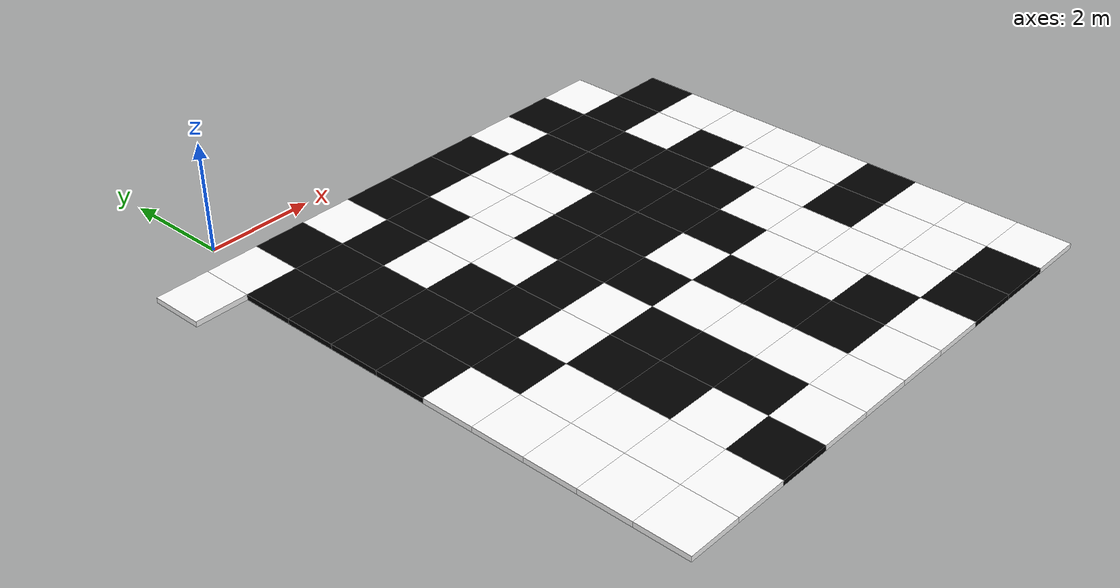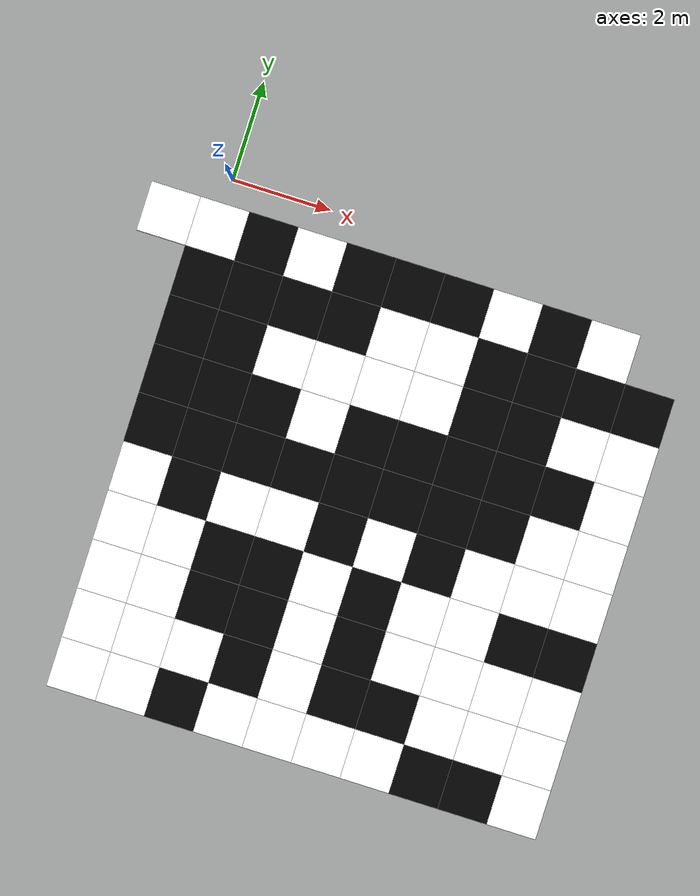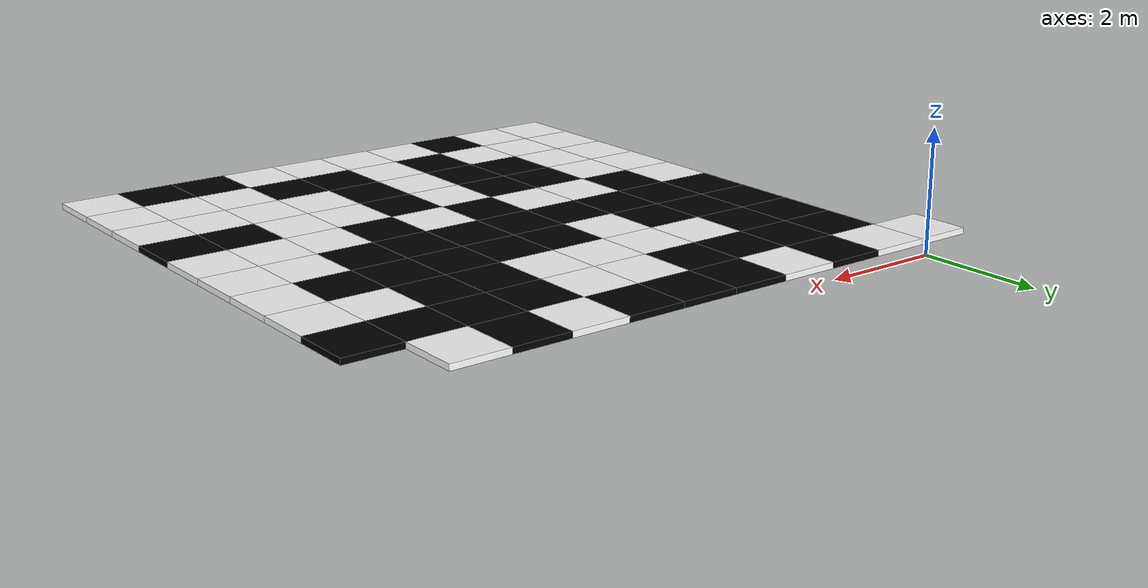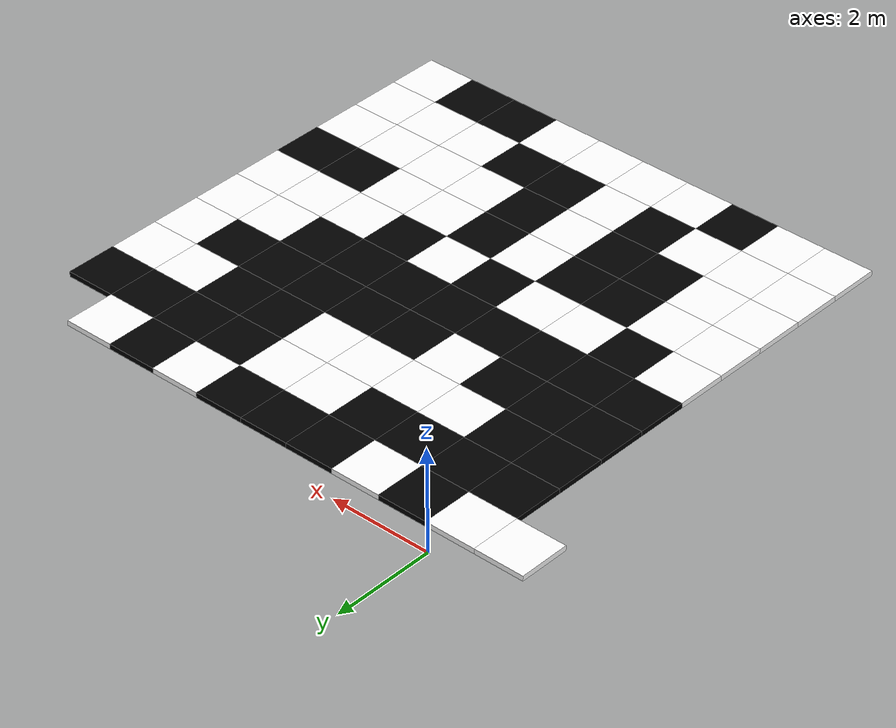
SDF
<sdf version="1.8">
 <world name="collective_perception_task_world">
  <model name="tile_-1_-1">
   <is_static>true</is_static>
   <pose>-1 -1 0 0 0 0</pose>
   <link name="link">
    <collision name="collision"><geometry><box><size>1 1 0.1</size></box></geometry></collision>
    <visual name="visual">
     <geometry><box><size>1 1 0.1</size></box></geometry>
     <material><ambient>1 1 1 1</ambient><diffuse>1 1 1 1</diffuse></material>
    </visual>
   </link>
  </model>
  <model name="tile_0_-10">
   <is_static>true</is_static>
   <pose>0 -10 0 0 0 0</pose>
   <link name="link">
    <collision name="collision"><geometry><box><size>1 1 0.1</size></box></geometry></collision>
    <visual name="visual">
     <geometry><box><size>1 1 0.1</size></box></geometry>
     <material><ambient>1 1 1 1</ambient><diffuse>1 1 1 1</diffuse></material>
    </visual>
   </link>
  </model>
  <model name="tile_0_-9">
   <is_static>true</is_static>
   <pose>0 -9 0 0 0 0</pose>
   <link name="link">
    <collision name="collision"><geometry><box><size>1 1 0.1</size></box></geometry></collision>
    <visual name="visual">
     <geometry><box><size>1 1 0.1</size></box></geometry>
     <material><ambient>1 1 1 1</ambient><diffuse>1 1 1 1</diffuse></material>
    </visual>
   </link>
  </model>
  <model name="tile_0_-8">
   <is_static>true</is_static>
   <pose>0 -8 0 0 0 0</pose>
   <link name="link">
    <collision name="collision"><geometry><box><size>1 1 0.1</size></box></geometry></collision>
    <visual name="visual">
     <geometry><box><size>1 1 0.1</size></box></geometry>
     <material><ambient>1 1 1 1</ambient><diffuse>1 1 1 1</diffuse></material>
    </visual>
   </link>
  </model>
  <model name="tile_0_-7">
   <is_static>true</is_static>
   <pose>0 -7 0 0 0 0</pose>
   <link name="link">
    <collision name="collision"><geometry><box><size>1 1 0.1</size></box></geometry></collision>
    <visual name="visual">
     <geometry><box><size>1 1 0.1</size></box></geometry>
     <material><ambient>1 1 1 1</ambient><diffuse>1 1 1 1</diffuse></material>
    </visual>
   </link>
  </model>
  <model name="tile_0_-6">
   <is_static>true</is_static>
   <pose>0 -6 0 0 0 0</pose>
   <link name="link">
    <collision name="collision"><geometry><box><size>1 1 0.1</size></box></geometry></collision>
    <visual name="visual">
     <geometry><box><size>1 1 0.1</size></box></geometry>
     <material><ambient>1 1 1 1</ambient><diffuse>1 1 1 1</diffuse></material>
    </visual>
   </link>
  </model>
  <model name="tile_0_-5">
   <is_static>true</is_static>
   <pose>0 -5 0 0 0 0</pose>
   <link name="link">
    <collision name="collision"><geometry><box><size>1 1 0.1</size></box></geometry></collision>
    <visual name="visual">
     <geometry><box><size>1 1 0.1</size></box></geometry>
     <material><ambient>0 0 0 1</ambient><diffuse>0 0 0 1</diffuse></material>
    </visual>
   </link>
  </model>
  <model name="tile_0_-4">
   <is_static>true</is_static>
   <pose>0 -4 0 0 0 0</pose>
   <link name="link">
    <collision name="collision"><geometry><box><size>1 1 0.1</size></box></geometry></collision>
    <visual name="visual">
     <geometry><box><size>1 1 0.1</size></box></geometry>
     <material><ambient>0 0 0 1</ambient><diffuse>0 0 0 1</diffuse></material>
    </visual>
   </link>
  </model>
  <model name="tile_0_-3">
   <is_static>true</is_static>
   <pose>0 -3 0 0 0 0</pose>
   <link name="link">
    <collision name="collision"><geometry><box><size>1 1 0.1</size></box></geometry></collision>
    <visual name="visual">
     <geometry><box><size>1 1 0.1</size></box></geometry>
     <material><ambient>0 0 0 1</ambient><diffuse>0 0 0 1</diffuse></material>
    </visual>
   </link>
  </model>
  <model name="tile_0_-2">
   <is_static>true</is_static>
   <pose>0 -2 0 0 0 0</pose>
   <link name="link">
    <collision name="collision"><geometry><box><size>1 1 0.1</size></box></geometry></collision>
    <visual name="visual">
     <geometry><box><size>1 1 0.1</size></box></geometry>
     <material><ambient>0 0 0 1</ambient><diffuse>0 0 0 1</diffuse></material>
    </visual>
   </link>
  </model>
  <model name="tile_0_-1">
   <is_static>true</is_static>
   <pose>0 -1 0 0 0 0</pose>
   <link name="link">
    <collision name="collision"><geometry><box><size>1 1 0.1</size></box></geometry></collision>
    <visual name="visual">
     <geometry><box><size>1 1 0.1</size></box></geometry>
     <material><ambient>1 1 1 1</ambient><diffuse>1 1 1 1</diffuse></material>
    </visual>
   </link>
  </model>
  <model name="tile_1_-10">
   <is_static>true</is_static>
   <pose>1 -10 0 0 0 0</pose>
   <link name="link">
    <collision name="collision"><geometry><box><size>1 1 0.1</size></box></geometry></collision>
    <visual name="visual">
     <geometry><box><size>1 1 0.1</size></box></geometry>
     <material><ambient>1 1 1 1</ambient><diffuse>1 1 1 1</diffuse></material>
    </visual>
   </link>
  </model>
  <model name="tile_1_-9">
   <is_static>true</is_static>
   <pose>1 -9 0 0 0 0</pose>
   <link name="link">
    <collision name="collision"><geometry><box><size>1 1 0.1</size></box></geometry></collision>
    <visual name="visual">
     <geometry><box><size>1 1 0.1</size></box></geometry>
     <material><ambient>1 1 1 1</ambient><diffuse>1 1 1 1</diffuse></material>
    </visual>
   </link>
  </model>
  <model name="tile_1_-8">
   <is_static>true</is_static>
   <pose>1 -8 0 0 0 0</pose>
   <link name="link">
    <collision name="collision"><geometry><box><size>1 1 0.1</size></box></geometry></collision>
    <visual name="visual">
     <geometry><box><size>1 1 0.1</size></box></geometry>
     <material><ambient>1 1 1 1</ambient><diffuse>1 1 1 1</diffuse></material>
    </visual>
   </link>
  </model>
  <model name="tile_1_-7">
   <is_static>true</is_static>
   <pose>1 -7 0 0 0 0</pose>
   <link name="link">
    <collision name="collision"><geometry><box><size>1 1 0.1</size></box></geometry></collision>
    <visual name="visual">
     <geometry><box><size>1 1 0.1</size></box></geometry>
     <material><ambient>1 1 1 1</ambient><diffuse>1 1 1 1</diffuse></material>
    </visual>
   </link>
  </model>
  <model name="tile_1_-6">
   <is_static>true</is_static>
   <pose>1 -6 0 0 0 0</pose>
   <link name="link">
    <collision name="collision"><geometry><box><size>1 1 0.1</size></box></geometry></collision>
    <visual name="visual">
     <geometry><box><size>1 1 0.1</size></box></geometry>
     <material><ambient>0 0 0 1</ambient><diffuse>0 0 0 1</diffuse></material>
    </visual>
   </link>
  </model>
  <model name="tile_1_-5">
   <is_static>true</is_static>
   <pose>1 -5 0 0 0 0</pose>
   <link name="link">
    <collision name="collision"><geometry><box><size>1 1 0.1</size></box></geometry></collision>
    <visual name="visual">
     <geometry><box><size>1 1 0.1</size></box></geometry>
     <material><ambient>0 0 0 1</ambient><diffuse>0 0 0 1</diffuse></material>
    </visual>
   </link>
  </model>
  <model name="tile_1_-4">
   <is_static>true</is_static>
   <pose>1 -4 0 0 0 0</pose>
   <link name="link">
    <collision name="collision"><geometry><box><size>1 1 0.1</size></box></geometry></collision>
    <visual name="visual">
     <geometry><box><size>1 1 0.1</size></box></geometry>
     <material><ambient>0 0 0 1</ambient><diffuse>0 0 0 1</diffuse></material>
    </visual>
   </link>
  </model>
  <model name="tile_1_-3">
   <is_static>true</is_static>
   <pose>1 -3 0 0 0 0</pose>
   <link name="link">
    <collision name="collision"><geometry><box><size>1 1 0.1</size></box></geometry></collision>
    <visual name="visual">
     <geometry><box><size>1 1 0.1</size></box></geometry>
     <material><ambient>0 0 0 1</ambient><diffuse>0 0 0 1</diffuse></material>
    </visual>
   </link>
  </model>
  <model name="tile_1_-2">
   <is_static>true</is_static>
   <pose>1 -2 0 0 0 0</pose>
   <link name="link">
    <collision name="collision"><geometry><box><size>1 1 0.1</size></box></geometry></collision>
    <visual name="visual">
     <geometry><box><size>1 1 0.1</size></box></geometry>
     <material><ambient>0 0 0 1</ambient><diffuse>0 0 0 1</diffuse></material>
    </visual>
   </link>
  </model>
  <model name="tile_1_-1">
   <is_static>true</is_static>
   <pose>1 -1 0 0 0 0</pose>
   <link name="link">
    <collision name="collision"><geometry><box><size>1 1 0.1</size></box></geometry></collision>
    <visual name="visual">
     <geometry><box><size>1 1 0.1</size></box></geometry>
     <material><ambient>0 0 0 1</ambient><diffuse>0 0 0 1</diffuse></material>
    </visual>
   </link>
  </model>
  <model name="tile_2_-10">
   <is_static>true</is_static>
   <pose>2 -10 0 0 0 0</pose>
   <link name="link">
    <collision name="collision"><geometry><box><size>1 1 0.1</size></box></geometry></collision>
    <visual name="visual">
     <geometry><box><size>1 1 0.1</size></box></geometry>
     <material><ambient>0 0 0 1</ambient><diffuse>0 0 0 1</diffuse></material>
    </visual>
   </link>
  </model>
  <model name="tile_2_-9">
   <is_static>true</is_static>
   <pose>2 -9 0 0 0 0</pose>
   <link name="link">
    <collision name="collision"><geometry><box><size>1 1 0.1</size></box></geometry></collision>
    <visual name="visual">
     <geometry><box><size>1 1 0.1</size></box></geometry>
     <material><ambient>1 1 1 1</ambient><diffuse>1 1 1 1</diffuse></material>
    </visual>
   </link>
  </model>
  <model name="tile_2_-8">
   <is_static>true</is_static>
   <pose>2 -8 0 0 0 0</pose>
   <link name="link">
    <collision name="collision"><geometry><box><size>1 1 0.1</size></box></geometry></collision>
    <visual name="visual">
     <geometry><box><size>1 1 0.1</size></box></geometry>
     <material><ambient>0 0 0 1</ambient><diffuse>0 0 0 1</diffuse></material>
    </visual>
   </link>
  </model>
  <model name="tile_2_-7">
   <is_static>true</is_static>
   <pose>2 -7 0 0 0 0</pose>
   <link name="link">
    <collision name="collision"><geometry><box><size>1 1 0.1</size></box></geometry></collision>
    <visual name="visual">
     <geometry><box><size>1 1 0.1</size></box></geometry>
     <material><ambient>0 0 0 1</ambient><diffuse>0 0 0 1</diffuse></material>
    </visual>
   </link>
  </model>
  <model name="tile_2_-6">
   <is_static>true</is_static>
   <pose>2 -6 0 0 0 0</pose>
   <link name="link">
    <collision name="collision"><geometry><box><size>1 1 0.1</size></box></geometry></collision>
    <visual name="visual">
     <geometry><box><size>1 1 0.1</size></box></geometry>
     <material><ambient>1 1 1 1</ambient><diffuse>1 1 1 1</diffuse></material>
    </visual>
   </link>
  </model>
  <model name="tile_2_-5">
   <is_static>true</is_static>
   <pose>2 -5 0 0 0 0</pose>
   <link name="link">
    <collision name="collision"><geometry><box><size>1 1 0.1</size></box></geometry></collision>
    <visual name="visual">
     <geometry><box><size>1 1 0.1</size></box></geometry>
     <material><ambient>0 0 0 1</ambient><diffuse>0 0 0 1</diffuse></material>
    </visual>
   </link>
  </model>
  <model name="tile_2_-4">
   <is_static>true</is_static>
   <pose>2 -4 0 0 0 0</pose>
   <link name="link">
    <collision name="collision"><geometry><box><size>1 1 0.1</size></box></geometry></collision>
    <visual name="visual">
     <geometry><box><size>1 1 0.1</size></box></geometry>
     <material><ambient>0 0 0 1</ambient><diffuse>0 0 0 1</diffuse></material>
    </visual>
   </link>
  </model>
  <model name="tile_2_-3">
   <is_static>true</is_static>
   <pose>2 -3 0 0 0 0</pose>
   <link name="link">
    <collision name="collision"><geometry><box><size>1 1 0.1</size></box></geometry></collision>
    <visual name="visual">
     <geometry><box><size>1 1 0.1</size></box></geometry>
     <material><ambient>1 1 1 1</ambient><diffuse>1 1 1 1</diffuse></material>
    </visual>
   </link>
  </model>
  <model name="tile_2_-2">
   <is_static>true</is_static>
   <pose>2 -2 0 0 0 0</pose>
   <link name="link">
    <collision name="collision"><geometry><box><size>1 1 0.1</size></box></geometry></collision>
    <visual name="visual">
     <geometry><box><size>1 1 0.1</size></box></geometry>
     <material><ambient>0 0 0 1</ambient><diffuse>0 0 0 1</diffuse></material>
    </visual>
   </link>
  </model>
  <model name="tile_2_-1">
   <is_static>true</is_static>
   <pose>2 -1 0 0 0 0</pose>
   <link name="link">
    <collision name="collision"><geometry><box><size>1 1 0.1</size></box></geometry></collision>
    <visual name="visual">
     <geometry><box><size>1 1 0.1</size></box></geometry>
     <material><ambient>1 1 1 1</ambient><diffuse>1 1 1 1</diffuse></material>
    </visual>
   </link>
  </model>
  <model name="tile_3_-10">
   <is_static>true</is_static>
   <pose>3 -10 0 0 0 0</pose>
   <link name="link">
    <collision name="collision"><geometry><box><size>1 1 0.1</size></box></geometry></collision>
    <visual name="visual">
     <geometry><box><size>1 1 0.1</size></box></geometry>
     <material><ambient>1 1 1 1</ambient><diffuse>1 1 1 1</diffuse></material>
    </visual>
   </link>
  </model>
  <model name="tile_3_-9">
   <is_static>true</is_static>
   <pose>3 -9 0 0 0 0</pose>
   <link name="link">
    <collision name="collision"><geometry><box><size>1 1 0.1</size></box></geometry></collision>
    <visual name="visual">
     <geometry><box><size>1 1 0.1</size></box></geometry>
     <material><ambient>0 0 0 1</ambient><diffuse>0 0 0 1</diffuse></material>
    </visual>
   </link>
  </model>
  <model name="tile_3_-8">
   <is_static>true</is_static>
   <pose>3 -8 0 0 0 0</pose>
   <link name="link">
    <collision name="collision"><geometry><box><size>1 1 0.1</size></box></geometry></collision>
    <visual name="visual">
     <geometry><box><size>1 1 0.1</size></box></geometry>
     <material><ambient>0 0 0 1</ambient><diffuse>0 0 0 1</diffuse></material>
    </visual>
   </link>
  </model>
  <model name="tile_3_-7">
   <is_static>true</is_static>
   <pose>3 -7 0 0 0 0</pose>
   <link name="link">
    <collision name="collision"><geometry><box><size>1 1 0.1</size></box></geometry></collision>
    <visual name="visual">
     <geometry><box><size>1 1 0.1</size></box></geometry>
     <material><ambient>0 0 0 1</ambient><diffuse>0 0 0 1</diffuse></material>
    </visual>
   </link>
  </model>
  <model name="tile_3_-6">
   <is_static>true</is_static>
   <pose>3 -6 0 0 0 0</pose>
   <link name="link">
    <collision name="collision"><geometry><box><size>1 1 0.1</size></box></geometry></collision>
    <visual name="visual">
     <geometry><box><size>1 1 0.1</size></box></geometry>
     <material><ambient>1 1 1 1</ambient><diffuse>1 1 1 1</diffuse></material>
    </visual>
   </link>
  </model>
  <model name="tile_3_-5">
   <is_static>true</is_static>
   <pose>3 -5 0 0 0 0</pose>
   <link name="link">
    <collision name="collision"><geometry><box><size>1 1 0.1</size></box></geometry></collision>
    <visual name="visual">
     <geometry><box><size>1 1 0.1</size></box></geometry>
     <material><ambient>0 0 0 1</ambient><diffuse>0 0 0 1</diffuse></material>
    </visual>
   </link>
  </model>
  <model name="tile_3_-4">
   <is_static>true</is_static>
   <pose>3 -4 0 0 0 0</pose>
   <link name="link">
    <collision name="collision"><geometry><box><size>1 1 0.1</size></box></geometry></collision>
    <visual name="visual">
     <geometry><box><size>1 1 0.1</size></box></geometry>
     <material><ambient>1 1 1 1</ambient><diffuse>1 1 1 1</diffuse></material>
    </visual>
   </link>
  </model>
  <model name="tile_3_-3">
   <is_static>true</is_static>
   <pose>3 -3 0 0 0 0</pose>
   <link name="link">
    <collision name="collision"><geometry><box><size>1 1 0.1</size></box></geometry></collision>
    <visual name="visual">
     <geometry><box><size>1 1 0.1</size></box></geometry>
     <material><ambient>1 1 1 1</ambient><diffuse>1 1 1 1</diffuse></material>
    </visual>
   </link>
  </model>
  <model name="tile_3_-2">
   <is_static>true</is_static>
   <pose>3 -2 0 0 0 0</pose>
   <link name="link">
    <collision name="collision"><geometry><box><size>1 1 0.1</size></box></geometry></collision>
    <visual name="visual">
     <geometry><box><size>1 1 0.1</size></box></geometry>
     <material><ambient>0 0 0 1</ambient><diffuse>0 0 0 1</diffuse></material>
    </visual>
   </link>
  </model>
  <model name="tile_3_-1">
   <is_static>true</is_static>
   <pose>3 -1 0 0 0 0</pose>
   <link name="link">
    <collision name="collision"><geometry><box><size>1 1 0.1</size></box></geometry></collision>
    <visual name="visual">
     <geometry><box><size>1 1 0.1</size></box></geometry>
     <material><ambient>0 0 0 1</ambient><diffuse>0 0 0 1</diffuse></material>
    </visual>
   </link>
  </model>
  <model name="tile_4_-10">
   <is_static>true</is_static>
   <pose>4 -10 0 0 0 0</pose>
   <link name="link">
    <collision name="collision"><geometry><box><size>1 1 0.1</size></box></geometry></collision>
    <visual name="visual">
     <geometry><box><size>1 1 0.1</size></box></geometry>
     <material><ambient>1 1 1 1</ambient><diffuse>1 1 1 1</diffuse></material>
    </visual>
   </link>
  </model>
  <model name="tile_4_-9">
   <is_static>true</is_static>
   <pose>4 -9 0 0 0 0</pose>
   <link name="link">
    <collision name="collision"><geometry><box><size>1 1 0.1</size></box></geometry></collision>
    <visual name="visual">
     <geometry><box><size>1 1 0.1</size></box></geometry>
     <material><ambient>1 1 1 1</ambient><diffuse>1 1 1 1</diffuse></material>
    </visual>
   </link>
  </model>
  <model name="tile_4_-8">
   <is_static>true</is_static>
   <pose>4 -8 0 0 0 0</pose>
   <link name="link">
    <collision name="collision"><geometry><box><size>1 1 0.1</size></box></geometry></collision>
    <visual name="visual">
     <geometry><box><size>1 1 0.1</size></box></geometry>
     <material><ambient>1 1 1 1</ambient><diffuse>1 1 1 1</diffuse></material>
    </visual>
   </link>
  </model>
  <model name="tile_4_-7">
   <is_static>true</is_static>
   <pose>4 -7 0 0 0 0</pose>
   <link name="link">
    <collision name="collision"><geometry><box><size>1 1 0.1</size></box></geometry></collision>
    <visual name="visual">
     <geometry><box><size>1 1 0.1</size></box></geometry>
     <material><ambient>1 1 1 1</ambient><diffuse>1 1 1 1</diffuse></material>
    </visual>
   </link>
  </model>
  <model name="tile_4_-6">
   <is_static>true</is_static>
   <pose>4 -6 0 0 0 0</pose>
   <link name="link">
    <collision name="collision"><geometry><box><size>1 1 0.1</size></box></geometry></collision>
    <visual name="visual">
     <geometry><box><size>1 1 0.1</size></box></geometry>
     <material><ambient>0 0 0 1</ambient><diffuse>0 0 0 1</diffuse></material>
    </visual>
   </link>
  </model>
  <model name="tile_4_-5">
   <is_static>true</is_static>
   <pose>4 -5 0 0 0 0</pose>
   <link name="link">
    <collision name="collision"><geometry><box><size>1 1 0.1</size></box></geometry></collision>
    <visual name="visual">
     <geometry><box><size>1 1 0.1</size></box></geometry>
     <material><ambient>0 0 0 1</ambient><diffuse>0 0 0 1</diffuse></material>
    </visual>
   </link>
  </model>
  <model name="tile_4_-4">
   <is_static>true</is_static>
   <pose>4 -4 0 0 0 0</pose>
   <link name="link">
    <collision name="collision"><geometry><box><size>1 1 0.1</size></box></geometry></collision>
    <visual name="visual">
     <geometry><box><size>1 1 0.1</size></box></geometry>
     <material><ambient>0 0 0 1</ambient><diffuse>0 0 0 1</diffuse></material>
    </visual>
   </link>
  </model>
  <model name="tile_4_-3">
   <is_static>true</is_static>
   <pose>4 -3 0 0 0 0</pose>
   <link name="link">
    <collision name="collision"><geometry><box><size>1 1 0.1</size></box></geometry></collision>
    <visual name="visual">
     <geometry><box><size>1 1 0.1</size></box></geometry>
     <material><ambient>1 1 1 1</ambient><diffuse>1 1 1 1</diffuse></material>
    </visual>
   </link>
  </model>
  <model name="tile_4_-2">
   <is_static>true</is_static>
   <pose>4 -2 0 0 0 0</pose>
   <link name="link">
    <collision name="collision"><geometry><box><size>1 1 0.1</size></box></geometry></collision>
    <visual name="visual">
     <geometry><box><size>1 1 0.1</size></box></geometry>
     <material><ambient>1 1 1 1</ambient><diffuse>1 1 1 1</diffuse></material>
    </visual>
   </link>
  </model>
  <model name="tile_4_-1">
   <is_static>true</is_static>
   <pose>4 -1 0 0 0 0</pose>
   <link name="link">
    <collision name="collision"><geometry><box><size>1 1 0.1</size></box></geometry></collision>
    <visual name="visual">
     <geometry><box><size>1 1 0.1</size></box></geometry>
     <material><ambient>0 0 0 1</ambient><diffuse>0 0 0 1</diffuse></material>
    </visual>
   </link>
  </model>
  <model name="tile_5_-10">
   <is_static>true</is_static>
   <pose>5 -10 0 0 0 0</pose>
   <link name="link">
    <collision name="collision"><geometry><box><size>1 1 0.1</size></box></geometry></collision>
    <visual name="visual">
     <geometry><box><size>1 1 0.1</size></box></geometry>
     <material><ambient>1 1 1 1</ambient><diffuse>1 1 1 1</diffuse></material>
    </visual>
   </link>
  </model>
  <model name="tile_5_-9">
   <is_static>true</is_static>
   <pose>5 -9 0 0 0 0</pose>
   <link name="link">
    <collision name="collision"><geometry><box><size>1 1 0.1</size></box></geometry></collision>
    <visual name="visual">
     <geometry><box><size>1 1 0.1</size></box></geometry>
     <material><ambient>0 0 0 1</ambient><diffuse>0 0 0 1</diffuse></material>
    </visual>
   </link>
  </model>
  <model name="tile_5_-8">
   <is_static>true</is_static>
   <pose>5 -8 0 0 0 0</pose>
   <link name="link">
    <collision name="collision"><geometry><box><size>1 1 0.1</size></box></geometry></collision>
    <visual name="visual">
     <geometry><box><size>1 1 0.1</size></box></geometry>
     <material><ambient>0 0 0 1</ambient><diffuse>0 0 0 1</diffuse></material>
    </visual>
   </link>
  </model>
  <model name="tile_5_-7">
   <is_static>true</is_static>
   <pose>5 -7 0 0 0 0</pose>
   <link name="link">
    <collision name="collision"><geometry><box><size>1 1 0.1</size></box></geometry></collision>
    <visual name="visual">
     <geometry><box><size>1 1 0.1</size></box></geometry>
     <material><ambient>0 0 0 1</ambient><diffuse>0 0 0 1</diffuse></material>
    </visual>
   </link>
  </model>
  <model name="tile_5_-6">
   <is_static>true</is_static>
   <pose>5 -6 0 0 0 0</pose>
   <link name="link">
    <collision name="collision"><geometry><box><size>1 1 0.1</size></box></geometry></collision>
    <visual name="visual">
     <geometry><box><size>1 1 0.1</size></box></geometry>
     <material><ambient>1 1 1 1</ambient><diffuse>1 1 1 1</diffuse></material>
    </visual>
   </link>
  </model>
  <model name="tile_5_-5">
   <is_static>true</is_static>
   <pose>5 -5 0 0 0 0</pose>
   <link name="link">
    <collision name="collision"><geometry><box><size>1 1 0.1</size></box></geometry></collision>
    <visual name="visual">
     <geometry><box><size>1 1 0.1</size></box></geometry>
     <material><ambient>0 0 0 1</ambient><diffuse>0 0 0 1</diffuse></material>
    </visual>
   </link>
  </model>
  <model name="tile_5_-4">
   <is_static>true</is_static>
   <pose>5 -4 0 0 0 0</pose>
   <link name="link">
    <collision name="collision"><geometry><box><size>1 1 0.1</size></box></geometry></collision>
    <visual name="visual">
     <geometry><box><size>1 1 0.1</size></box></geometry>
     <material><ambient>0 0 0 1</ambient><diffuse>0 0 0 1</diffuse></material>
    </visual>
   </link>
  </model>
  <model name="tile_5_-3">
   <is_static>true</is_static>
   <pose>5 -3 0 0 0 0</pose>
   <link name="link">
    <collision name="collision"><geometry><box><size>1 1 0.1</size></box></geometry></collision>
    <visual name="visual">
     <geometry><box><size>1 1 0.1</size></box></geometry>
     <material><ambient>1 1 1 1</ambient><diffuse>1 1 1 1</diffuse></material>
    </visual>
   </link>
  </model>
  <model name="tile_5_-2">
   <is_static>true</is_static>
   <pose>5 -2 0 0 0 0</pose>
   <link name="link">
    <collision name="collision"><geometry><box><size>1 1 0.1</size></box></geometry></collision>
    <visual name="visual">
     <geometry><box><size>1 1 0.1</size></box></geometry>
     <material><ambient>1 1 1 1</ambient><diffuse>1 1 1 1</diffuse></material>
    </visual>
   </link>
  </model>
  <model name="tile_5_-1">
   <is_static>true</is_static>
   <pose>5 -1 0 0 0 0</pose>
   <link name="link">
    <collision name="collision"><geometry><box><size>1 1 0.1</size></box></geometry></collision>
    <visual name="visual">
     <geometry><box><size>1 1 0.1</size></box></geometry>
     <material><ambient>0 0 0 1</ambient><diffuse>0 0 0 1</diffuse></material>
    </visual>
   </link>
  </model>
  <model name="tile_6_-10">
   <is_static>true</is_static>
   <pose>6 -10 0 0 0 0</pose>
   <link name="link">
    <collision name="collision"><geometry><box><size>1 1 0.1</size></box></geometry></collision>
    <visual name="visual">
     <geometry><box><size>1 1 0.1</size></box></geometry>
     <material><ambient>1 1 1 1</ambient><diffuse>1 1 1 1</diffuse></material>
    </visual>
   </link>
  </model>
  <model name="tile_6_-9">
   <is_static>true</is_static>
   <pose>6 -9 0 0 0 0</pose>
   <link name="link">
    <collision name="collision"><geometry><box><size>1 1 0.1</size></box></geometry></collision>
    <visual name="visual">
     <geometry><box><size>1 1 0.1</size></box></geometry>
     <material><ambient>0 0 0 1</ambient><diffuse>0 0 0 1</diffuse></material>
    </visual>
   </link>
  </model>
  <model name="tile_6_-8">
   <is_static>true</is_static>
   <pose>6 -8 0 0 0 0</pose>
   <link name="link">
    <collision name="collision"><geometry><box><size>1 1 0.1</size></box></geometry></collision>
    <visual name="visual">
     <geometry><box><size>1 1 0.1</size></box></geometry>
     <material><ambient>1 1 1 1</ambient><diffuse>1 1 1 1</diffuse></material>
    </visual>
   </link>
  </model>
  <model name="tile_6_-7">
   <is_static>true</is_static>
   <pose>6 -7 0 0 0 0</pose>
   <link name="link">
    <collision name="collision"><geometry><box><size>1 1 0.1</size></box></geometry></collision>
    <visual name="visual">
     <geometry><box><size>1 1 0.1</size></box></geometry>
     <material><ambient>1 1 1 1</ambient><diffuse>1 1 1 1</diffuse></material>
    </visual>
   </link>
  </model>
  <model name="tile_6_-6">
   <is_static>true</is_static>
   <pose>6 -6 0 0 0 0</pose>
   <link name="link">
    <collision name="collision"><geometry><box><size>1 1 0.1</size></box></geometry></collision>
    <visual name="visual">
     <geometry><box><size>1 1 0.1</size></box></geometry>
     <material><ambient>0 0 0 1</ambient><diffuse>0 0 0 1</diffuse></material>
    </visual>
   </link>
  </model>
  <model name="tile_6_-5">
   <is_static>true</is_static>
   <pose>6 -5 0 0 0 0</pose>
   <link name="link">
    <collision name="collision"><geometry><box><size>1 1 0.1</size></box></geometry></collision>
    <visual name="visual">
     <geometry><box><size>1 1 0.1</size></box></geometry>
     <material><ambient>0 0 0 1</ambient><diffuse>0 0 0 1</diffuse></material>
    </visual>
   </link>
  </model>
  <model name="tile_6_-4">
   <is_static>true</is_static>
   <pose>6 -4 0 0 0 0</pose>
   <link name="link">
    <collision name="collision"><geometry><box><size>1 1 0.1</size></box></geometry></collision>
    <visual name="visual">
     <geometry><box><size>1 1 0.1</size></box></geometry>
     <material><ambient>0 0 0 1</ambient><diffuse>0 0 0 1</diffuse></material>
    </visual>
   </link>
  </model>
  <model name="tile_6_-3">
   <is_static>true</is_static>
   <pose>6 -3 0 0 0 0</pose>
   <link name="link">
    <collision name="collision"><geometry><box><size>1 1 0.1</size></box></geometry></collision>
    <visual name="visual">
     <geometry><box><size>1 1 0.1</size></box></geometry>
     <material><ambient>0 0 0 1</ambient><diffuse>0 0 0 1</diffuse></material>
    </visual>
   </link>
  </model>
  <model name="tile_6_-2">
   <is_static>true</is_static>
   <pose>6 -2 0 0 0 0</pose>
   <link name="link">
    <collision name="collision"><geometry><box><size>1 1 0.1</size></box></geometry></collision>
    <visual name="visual">
     <geometry><box><size>1 1 0.1</size></box></geometry>
     <material><ambient>0 0 0 1</ambient><diffuse>0 0 0 1</diffuse></material>
    </visual>
   </link>
  </model>
  <model name="tile_6_-1">
   <is_static>true</is_static>
   <pose>6 -1 0 0 0 0</pose>
   <link name="link">
    <collision name="collision"><geometry><box><size>1 1 0.1</size></box></geometry></collision>
    <visual name="visual">
     <geometry><box><size>1 1 0.1</size></box></geometry>
     <material><ambient>1 1 1 1</ambient><diffuse>1 1 1 1</diffuse></material>
    </visual>
   </link>
  </model>
  <model name="tile_7_-10">
   <is_static>true</is_static>
   <pose>7 -10 0 0 0 0</pose>
   <link name="link">
    <collision name="collision"><geometry><box><size>1 1 0.1</size></box></geometry></collision>
    <visual name="visual">
     <geometry><box><size>1 1 0.1</size></box></geometry>
     <material><ambient>0 0 0 1</ambient><diffuse>0 0 0 1</diffuse></material>
    </visual>
   </link>
  </model>
  <model name="tile_7_-9">
   <is_static>true</is_static>
   <pose>7 -9 0 0 0 0</pose>
   <link name="link">
    <collision name="collision"><geometry><box><size>1 1 0.1</size></box></geometry></collision>
    <visual name="visual">
     <geometry><box><size>1 1 0.1</size></box></geometry>
     <material><ambient>1 1 1 1</ambient><diffuse>1 1 1 1</diffuse></material>
    </visual>
   </link>
  </model>
  <model name="tile_7_-8">
   <is_static>true</is_static>
   <pose>7 -8 0 0 0 0</pose>
   <link name="link">
    <collision name="collision"><geometry><box><size>1 1 0.1</size></box></geometry></collision>
    <visual name="visual">
     <geometry><box><size>1 1 0.1</size></box></geometry>
     <material><ambient>1 1 1 1</ambient><diffuse>1 1 1 1</diffuse></material>
    </visual>
   </link>
  </model>
  <model name="tile_7_-7">
   <is_static>true</is_static>
   <pose>7 -7 0 0 0 0</pose>
   <link name="link">
    <collision name="collision"><geometry><box><size>1 1 0.1</size></box></geometry></collision>
    <visual name="visual">
     <geometry><box><size>1 1 0.1</size></box></geometry>
     <material><ambient>1 1 1 1</ambient><diffuse>1 1 1 1</diffuse></material>
    </visual>
   </link>
  </model>
  <model name="tile_7_-6">
   <is_static>true</is_static>
   <pose>7 -6 0 0 0 0</pose>
   <link name="link">
    <collision name="collision"><geometry><box><size>1 1 0.1</size></box></geometry></collision>
    <visual name="visual">
     <geometry><box><size>1 1 0.1</size></box></geometry>
     <material><ambient>1 1 1 1</ambient><diffuse>1 1 1 1</diffuse></material>
    </visual>
   </link>
  </model>
  <model name="tile_7_-5">
   <is_static>true</is_static>
   <pose>7 -5 0 0 0 0</pose>
   <link name="link">
    <collision name="collision"><geometry><box><size>1 1 0.1</size></box></geometry></collision>
    <visual name="visual">
     <geometry><box><size>1 1 0.1</size></box></geometry>
     <material><ambient>0 0 0 1</ambient><diffuse>0 0 0 1</diffuse></material>
    </visual>
   </link>
  </model>
  <model name="tile_7_-4">
   <is_static>true</is_static>
   <pose>7 -4 0 0 0 0</pose>
   <link name="link">
    <collision name="collision"><geometry><box><size>1 1 0.1</size></box></geometry></collision>
    <visual name="visual">
     <geometry><box><size>1 1 0.1</size></box></geometry>
     <material><ambient>0 0 0 1</ambient><diffuse>0 0 0 1</diffuse></material>
    </visual>
   </link>
  </model>
  <model name="tile_7_-3">
   <is_static>true</is_static>
   <pose>7 -3 0 0 0 0</pose>
   <link name="link">
    <collision name="collision"><geometry><box><size>1 1 0.1</size></box></geometry></collision>
    <visual name="visual">
     <geometry><box><size>1 1 0.1</size></box></geometry>
     <material><ambient>0 0 0 1</ambient><diffuse>0 0 0 1</diffuse></material>
    </visual>
   </link>
  </model>
  <model name="tile_7_-2">
   <is_static>true</is_static>
   <pose>7 -2 0 0 0 0</pose>
   <link name="link">
    <collision name="collision"><geometry><box><size>1 1 0.1</size></box></geometry></collision>
    <visual name="visual">
     <geometry><box><size>1 1 0.1</size></box></geometry>
     <material><ambient>0 0 0 1</ambient><diffuse>0 0 0 1</diffuse></material>
    </visual>
   </link>
  </model>
  <model name="tile_7_-1">
   <is_static>true</is_static>
   <pose>7 -1 0 0 0 0</pose>
   <link name="link">
    <collision name="collision"><geometry><box><size>1 1 0.1</size></box></geometry></collision>
    <visual name="visual">
     <geometry><box><size>1 1 0.1</size></box></geometry>
     <material><ambient>0 0 0 1</ambient><diffuse>0 0 0 1</diffuse></material>
    </visual>
   </link>
  </model>
  <model name="tile_8_-10">
   <is_static>true</is_static>
   <pose>8 -10 0 0 0 0</pose>
   <link name="link">
    <collision name="collision"><geometry><box><size>1 1 0.1</size></box></geometry></collision>
    <visual name="visual">
     <geometry><box><size>1 1 0.1</size></box></geometry>
     <material><ambient>0 0 0 1</ambient><diffuse>0 0 0 1</diffuse></material>
    </visual>
   </link>
  </model>
  <model name="tile_8_-9">
   <is_static>true</is_static>
   <pose>8 -9 0 0 0 0</pose>
   <link name="link">
    <collision name="collision"><geometry><box><size>1 1 0.1</size></box></geometry></collision>
    <visual name="visual">
     <geometry><box><size>1 1 0.1</size></box></geometry>
     <material><ambient>1 1 1 1</ambient><diffuse>1 1 1 1</diffuse></material>
    </visual>
   </link>
  </model>
  <model name="tile_8_-8">
   <is_static>true</is_static>
   <pose>8 -8 0 0 0 0</pose>
   <link name="link">
    <collision name="collision"><geometry><box><size>1 1 0.1</size></box></geometry></collision>
    <visual name="visual">
     <geometry><box><size>1 1 0.1</size></box></geometry>
     <material><ambient>1 1 1 1</ambient><diffuse>1 1 1 1</diffuse></material>
    </visual>
   </link>
  </model>
  <model name="tile_8_-7">
   <is_static>true</is_static>
   <pose>8 -7 0 0 0 0</pose>
   <link name="link">
    <collision name="collision"><geometry><box><size>1 1 0.1</size></box></geometry></collision>
    <visual name="visual">
     <geometry><box><size>1 1 0.1</size></box></geometry>
     <material><ambient>0 0 0 1</ambient><diffuse>0 0 0 1</diffuse></material>
    </visual>
   </link>
  </model>
  <model name="tile_8_-6">
   <is_static>true</is_static>
   <pose>8 -6 0 0 0 0</pose>
   <link name="link">
    <collision name="collision"><geometry><box><size>1 1 0.1</size></box></geometry></collision>
    <visual name="visual">
     <geometry><box><size>1 1 0.1</size></box></geometry>
     <material><ambient>1 1 1 1</ambient><diffuse>1 1 1 1</diffuse></material>
    </visual>
   </link>
  </model>
  <model name="tile_8_-5">
   <is_static>true</is_static>
   <pose>8 -5 0 0 0 0</pose>
   <link name="link">
    <collision name="collision"><geometry><box><size>1 1 0.1</size></box></geometry></collision>
    <visual name="visual">
     <geometry><box><size>1 1 0.1</size></box></geometry>
     <material><ambient>1 1 1 1</ambient><diffuse>1 1 1 1</diffuse></material>
    </visual>
   </link>
  </model>
  <model name="tile_8_-4">
   <is_static>true</is_static>
   <pose>8 -4 0 0 0 0</pose>
   <link name="link">
    <collision name="collision"><geometry><box><size>1 1 0.1</size></box></geometry></collision>
    <visual name="visual">
     <geometry><box><size>1 1 0.1</size></box></geometry>
     <material><ambient>0 0 0 1</ambient><diffuse>0 0 0 1</diffuse></material>
    </visual>
   </link>
  </model>
  <model name="tile_8_-3">
   <is_static>true</is_static>
   <pose>8 -3 0 0 0 0</pose>
   <link name="link">
    <collision name="collision"><geometry><box><size>1 1 0.1</size></box></geometry></collision>
    <visual name="visual">
     <geometry><box><size>1 1 0.1</size></box></geometry>
     <material><ambient>1 1 1 1</ambient><diffuse>1 1 1 1</diffuse></material>
    </visual>
   </link>
  </model>
  <model name="tile_8_-2">
   <is_static>true</is_static>
   <pose>8 -2 0 0 0 0</pose>
   <link name="link">
    <collision name="collision"><geometry><box><size>1 1 0.1</size></box></geometry></collision>
    <visual name="visual">
     <geometry><box><size>1 1 0.1</size></box></geometry>
     <material><ambient>0 0 0 1</ambient><diffuse>0 0 0 1</diffuse></material>
    </visual>
   </link>
  </model>
  <model name="tile_8_-1">
   <is_static>true</is_static>
   <pose>8 -1 0 0 0 0</pose>
   <link name="link">
    <collision name="collision"><geometry><box><size>1 1 0.1</size></box></geometry></collision>
    <visual name="visual">
     <geometry><box><size>1 1 0.1</size></box></geometry>
     <material><ambient>1 1 1 1</ambient><diffuse>1 1 1 1</diffuse></material>
    </visual>
   </link>
  </model>
  <model name="tile_9_-10">
   <is_static>true</is_static>
   <pose>9 -10 0 0 0 0</pose>
   <link name="link">
    <collision name="collision"><geometry><box><size>1 1 0.1</size></box></geometry></collision>
    <visual name="visual">
     <geometry><box><size>1 1 0.1</size></box></geometry>
     <material><ambient>1 1 1 1</ambient><diffuse>1 1 1 1</diffuse></material>
    </visual>
   </link>
  </model>
  <model name="tile_9_-9">
   <is_static>true</is_static>
   <pose>9 -9 0 0 0 0</pose>
   <link name="link">
    <collision name="collision"><geometry><box><size>1 1 0.1</size></box></geometry></collision>
    <visual name="visual">
     <geometry><box><size>1 1 0.1</size></box></geometry>
     <material><ambient>1 1 1 1</ambient><diffuse>1 1 1 1</diffuse></material>
    </visual>
   </link>
  </model>
  <model name="tile_9_-8">
   <is_static>true</is_static>
   <pose>9 -8 0 0 0 0</pose>
   <link name="link">
    <collision name="collision"><geometry><box><size>1 1 0.1</size></box></geometry></collision>
    <visual name="visual">
     <geometry><box><size>1 1 0.1</size></box></geometry>
     <material><ambient>1 1 1 1</ambient><diffuse>1 1 1 1</diffuse></material>
    </visual>
   </link>
  </model>
  <model name="tile_9_-7">
   <is_static>true</is_static>
   <pose>9 -7 0 0 0 0</pose>
   <link name="link">
    <collision name="collision"><geometry><box><size>1 1 0.1</size></box></geometry></collision>
    <visual name="visual">
     <geometry><box><size>1 1 0.1</size></box></geometry>
     <material><ambient>0 0 0 1</ambient><diffuse>0 0 0 1</diffuse></material>
    </visual>
   </link>
  </model>
  <model name="tile_9_-6">
   <is_static>true</is_static>
   <pose>9 -6 0 0 0 0</pose>
   <link name="link">
    <collision name="collision"><geometry><box><size>1 1 0.1</size></box></geometry></collision>
    <visual name="visual">
     <geometry><box><size>1 1 0.1</size></box></geometry>
     <material><ambient>1 1 1 1</ambient><diffuse>1 1 1 1</diffuse></material>
    </visual>
   </link>
  </model>
  <model name="tile_9_-5">
   <is_static>true</is_static>
   <pose>9 -5 0 0 0 0</pose>
   <link name="link">
    <collision name="collision"><geometry><box><size>1 1 0.1</size></box></geometry></collision>
    <visual name="visual">
     <geometry><box><size>1 1 0.1</size></box></geometry>
     <material><ambient>1 1 1 1</ambient><diffuse>1 1 1 1</diffuse></material>
    </visual>
   </link>
  </model>
  <model name="tile_9_-4">
   <is_static>true</is_static>
   <pose>9 -4 0 0 0 0</pose>
   <link name="link">
    <collision name="collision"><geometry><box><size>1 1 0.1</size></box></geometry></collision>
    <visual name="visual">
     <geometry><box><size>1 1 0.1</size></box></geometry>
     <material><ambient>1 1 1 1</ambient><diffuse>1 1 1 1</diffuse></material>
    </visual>
   </link>
  </model>
  <model name="tile_9_-3">
   <is_static>true</is_static>
   <pose>9 -3 0 0 0 0</pose>
   <link name="link">
    <collision name="collision"><geometry><box><size>1 1 0.1</size></box></geometry></collision>
    <visual name="visual">
     <geometry><box><size>1 1 0.1</size></box></geometry>
     <material><ambient>1 1 1 1</ambient><diffuse>1 1 1 1</diffuse></material>
    </visual>
   </link>
  </model>
  <model name="tile_9_-2">
   <is_static>true</is_static>
   <pose>9 -2 0 0 0 0</pose>
   <link name="link">
    <collision name="collision"><geometry><box><size>1 1 0.1</size></box></geometry></collision>
    <visual name="visual">
     <geometry><box><size>1 1 0.1</size></box></geometry>
     <material><ambient>0 0 0 1</ambient><diffuse>0 0 0 1</diffuse></material>
    </visual>
   </link>
  </model>
 </world>
</sdf>
